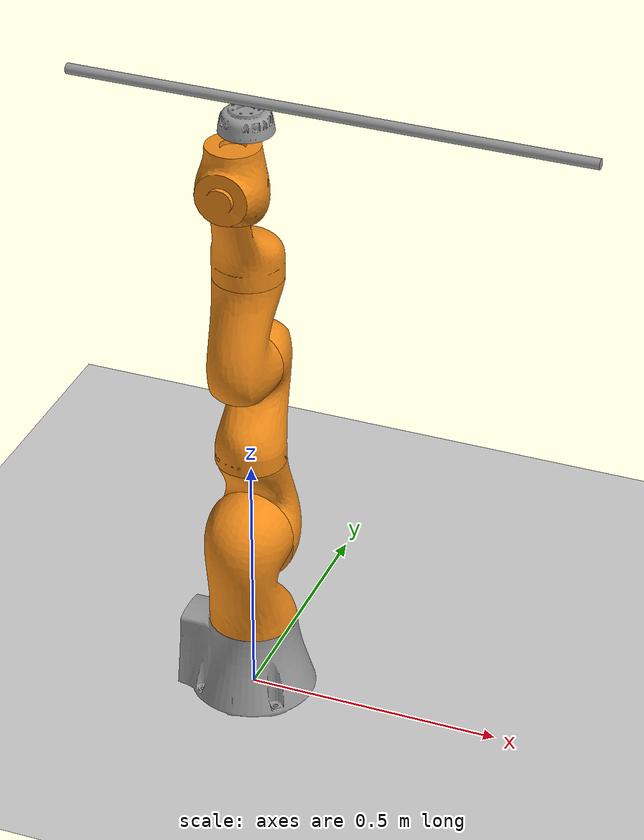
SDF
<sdf version="1.6">
 <world name="default">
  <model name="ground_plane">
   <static>1</static>
   <link name="link">
    <collision name="collision">
     <geometry><plane><normal>0 0 1</normal><size>100 100</size></plane></geometry>
     <surface>
      <contact><collide_bitmask>65535</collide_bitmask></contact>
      <friction><ode><mu>100</mu><mu2>50</mu2></ode></friction>
     </surface>
    </collision>
    <visual name="visual">
     <cast_shadows>0</cast_shadows>
     <geometry><plane><normal>0 0 1</normal><size>100 100</size></plane></geometry>
     <material>
      <script><uri>file://media/materials/scripts/gazebo.material</uri><name>Gazebo/Grey</name></script>
     </material>
    </visual>
   </link>
  </model>
  <light name="sun" type="directional">
   <pose>0 0 10 0 -0 0</pose>
   <diffuse>0.8 0.8 0.8 1</diffuse>
   <specular>0.2 0.2 0.2 1</specular>
   <attenuation>
    <range>1000</range>
    <constant>0.9</constant>
    <linear>0.01</linear>
    <quadratic>0.001</quadratic>
   </attenuation>
   <direction>-0.5 0.1 -0.9</direction>
  </light>
  <gravity>0 0 -9.8</gravity>
  <magnetic_field>6e-06 2.3e-05 -4.2e-05</magnetic_field>
  <atmosphere type="adiabatic"/>
  <physics name="default_physics" default="0" type="ode">
   <max_step_size>0.001</max_step_size>
   <real_time_factor>1</real_time_factor>
   <real_time_update_rate>1000</real_time_update_rate>
  </physics>
  <scene><ambient>0.4 0.4 0.4 1</ambient><background>0.7 0.7 0.7 1</background><shadows>1</shadows></scene>
  <audio><device>default</device></audio>
  <spherical_coordinates>
   <surface_model>EARTH_WGS84</surface_model>
   <latitude_deg>0</latitude_deg>
   <longitude_deg>0</longitude_deg>
   <elevation>0</elevation>
   <heading_deg>0</heading_deg>
  </spherical_coordinates>
  <model name="iiwa">
   <link name="iiwa_link_0">
    <inertial>
     <pose>-0.1 0 0.07 0 -0 0</pose>
     <mass>5</mass>
     <inertia><ixx>0.05</ixx><ixy>0</ixy><ixz>0</ixz><iyy>0.06</iyy><iyz>0</iyz><izz>0.03</izz></inertia>
    </inertial>
    <visual name="iiwa_link_0_visual">
     <geometry>
      <mesh>
       <scale>1 1 1</scale>
       <uri>/home/yoan/ros_ws/src/iiwa_stack/iiwa_description/meshes/iiwa7/visual/link_0.stl</uri>
      </mesh>
     </geometry>
     <material>
      <script><name>Gazebo/Grey</name><uri>file://media/materials/scripts/gazebo.material</uri></script>
     </material>
    </visual>
    <collision name="iiwa_link_0_collision">
     <geometry>
      <mesh>
       <uri>/home/yoan/ros_ws/src/iiwa_stack/iiwa_description/meshes/iiwa7/collision/link_0.stl</uri>
       <scale>1 1 1</scale>
      </mesh>
     </geometry>
     <surface>
      <friction>
       <ode><mu>0.2</mu><mu2>0.2</mu2><fdir1>0 0 0</fdir1><slip1>0</slip1><slip2>0</slip2></ode>
       <torsional>
        <coefficient>1</coefficient>
        <patch_radius>0</patch_radius>
        <surface_radius>0</surface_radius>
        <use_patch_radius>1</use_patch_radius>
        <ode><slip>0</slip></ode>
       </torsional>
      </friction>
      <bounce><restitution_coefficient>0</restitution_coefficient><threshold>1e+06</threshold></bounce>
      <contact>
       <collide_without_contact>0</collide_without_contact>
       <collide_without_contact_bitmask>1</collide_without_contact_bitmask>
       <collide_bitmask>1</collide_bitmask>
       <ode>
        <soft_cfm>0</soft_cfm>
        <soft_erp>0.2</soft_erp>
        <kp>1e+13</kp>
        <kd>1</kd>
        <max_vel>0.01</max_vel>
        <min_depth>0</min_depth>
       </ode>
       <bullet>
        <split_impulse>1</split_impulse>
        <split_impulse_penetration_threshold>-0.01</split_impulse_penetration_threshold>
        <soft_cfm>0</soft_cfm>
        <soft_erp>0.2</soft_erp>
        <kp>1e+13</kp>
        <kd>1</kd>
       </bullet>
      </contact>
     </surface>
    </collision>
   </link>
   <link name="iiwa_link_1">
    <pose>-0 -0 0.15 0 -0 0</pose>
    <inertial>
     <pose>0 -0.03 0.12 0 -0 0</pose>
     <mass>3.4525</mass>
     <inertia>
      <ixx>0.02183</ixx>
      <ixy>0</ixy>
      <ixz>0</ixz>
      <iyy>0.007703</iyy>
      <iyz>-0.003887</iyz>
      <izz>0.02083</izz>
     </inertia>
    </inertial>
    <visual name="iiwa_link_1_visual">
     <pose>0 0 0.0075 0 -0 0</pose>
     <geometry>
      <mesh>
       <scale>1 1 1</scale>
       <uri>/home/yoan/ros_ws/src/iiwa_stack/iiwa_description/meshes/iiwa7/visual/link_1.stl</uri>
      </mesh>
     </geometry>
     <material>
      <script><name>Gazebo/Orange</name><uri>file://media/materials/scripts/gazebo.material</uri></script>
     </material>
    </visual>
    <collision name="iiwa_link_1_collision">
     <pose>0 0 0.0075 0 -0 0</pose>
     <geometry>
      <mesh>
       <uri>/home/yoan/ros_ws/src/iiwa_stack/iiwa_description/meshes/iiwa7/collision/link_1.stl</uri>
       <scale>1 1 1</scale>
      </mesh>
     </geometry>
     <surface>
      <friction>
       <ode><mu>0.2</mu><mu2>0.2</mu2><fdir1>0 0 0</fdir1><slip1>0</slip1><slip2>0</slip2></ode>
       <torsional>
        <coefficient>1</coefficient>
        <patch_radius>0</patch_radius>
        <surface_radius>0</surface_radius>
        <use_patch_radius>1</use_patch_radius>
        <ode><slip>0</slip></ode>
       </torsional>
      </friction>
      <bounce><restitution_coefficient>0</restitution_coefficient><threshold>1e+06</threshold></bounce>
      <contact>
       <collide_without_contact>0</collide_without_contact>
       <collide_without_contact_bitmask>1</collide_without_contact_bitmask>
       <collide_bitmask>1</collide_bitmask>
       <ode>
        <soft_cfm>0</soft_cfm>
        <soft_erp>0.2</soft_erp>
        <kp>1e+13</kp>
        <kd>1</kd>
        <max_vel>0.01</max_vel>
        <min_depth>0</min_depth>
       </ode>
       <bullet>
        <split_impulse>1</split_impulse>
        <split_impulse_penetration_threshold>-0.01</split_impulse_penetration_threshold>
        <soft_cfm>0</soft_cfm>
        <soft_erp>0.2</soft_erp>
        <kp>1e+13</kp>
        <kd>1</kd>
       </bullet>
      </contact>
     </surface>
    </collision>
   </link>
   <link name="iiwa_link_2">
    <pose>0 -0 0.34 1.5708 -0 -3.14159</pose>
    <inertial>
     <pose>0.0003 0.059 0.042 0 -0 0</pose>
     <mass>3.4821</mass>
     <inertia>
      <ixx>0.02076</ixx>
      <ixy>0</ixy>
      <ixz>-0.003626</ixz>
      <iyy>0.02179</iyy>
      <iyz>0</iyz>
      <izz>0.00779</izz>
     </inertia>
    </inertial>
    <visual name="iiwa_link_2_visual">
     <geometry>
      <mesh>
       <scale>1 1 1</scale>
       <uri>/home/yoan/ros_ws/src/iiwa_stack/iiwa_description/meshes/iiwa7/visual/link_2.stl</uri>
      </mesh>
     </geometry>
     <material>
      <script><name>Gazebo/Orange</name><uri>file://media/materials/scripts/gazebo.material</uri></script>
     </material>
    </visual>
    <collision name="iiwa_link_2_collision">
     <geometry>
      <mesh>
       <uri>/home/yoan/ros_ws/src/iiwa_stack/iiwa_description/meshes/iiwa7/collision/link_2.stl</uri>
       <scale>1 1 1</scale>
      </mesh>
     </geometry>
     <surface>
      <friction>
       <ode><mu>0.2</mu><mu2>0.2</mu2><fdir1>0 0 0</fdir1><slip1>0</slip1><slip2>0</slip2></ode>
       <torsional>
        <coefficient>1</coefficient>
        <patch_radius>0</patch_radius>
        <surface_radius>0</surface_radius>
        <use_patch_radius>1</use_patch_radius>
        <ode><slip>0</slip></ode>
       </torsional>
      </friction>
      <bounce><restitution_coefficient>0</restitution_coefficient><threshold>1e+06</threshold></bounce>
      <contact>
       <collide_without_contact>0</collide_without_contact>
       <collide_without_contact_bitmask>1</collide_without_contact_bitmask>
       <collide_bitmask>1</collide_bitmask>
       <ode>
        <soft_cfm>0</soft_cfm>
        <soft_erp>0.2</soft_erp>
        <kp>1e+13</kp>
        <kd>1</kd>
        <max_vel>0.01</max_vel>
        <min_depth>0</min_depth>
       </ode>
       <bullet>
        <split_impulse>1</split_impulse>
        <split_impulse_penetration_threshold>-0.01</split_impulse_penetration_threshold>
        <soft_cfm>0</soft_cfm>
        <soft_erp>0.2</soft_erp>
        <kp>1e+13</kp>
        <kd>1</kd>
       </bullet>
      </contact>
     </surface>
    </collision>
   </link>
   <link name="iiwa_link_3">
    <pose>-0 -0 0.55 0 -0 0</pose>
    <inertial>
     <pose>0 0.03 0.13 0 -0 0</pose>
     <mass>4.05623</mass>
     <inertia>
      <ixx>0.03204</ixx>
      <ixy>0</ixy>
      <ixz>0</ixz>
      <iyy>0.00972</iyy>
      <iyz>0.006227</iyz>
      <izz>0.03042</izz>
     </inertia>
    </inertial>
    <visual name="iiwa_link_3_visual">
     <pose>0 0 -0.026 0 -0 0</pose>
     <geometry>
      <mesh>
       <scale>1 1 1</scale>
       <uri>/home/yoan/ros_ws/src/iiwa_stack/iiwa_description/meshes/iiwa7/visual/link_3.stl</uri>
      </mesh>
     </geometry>
     <material>
      <script><name>Gazebo/Orange</name><uri>file://media/materials/scripts/gazebo.material</uri></script>
     </material>
    </visual>
    <collision name="iiwa_link_3_collision">
     <pose>0 0 -0.026 0 -0 0</pose>
     <geometry>
      <mesh>
       <uri>/home/yoan/ros_ws/src/iiwa_stack/iiwa_description/meshes/iiwa7/collision/link_3.stl</uri>
       <scale>1 1 1</scale>
      </mesh>
     </geometry>
     <surface>
      <friction>
       <ode><mu>0.2</mu><mu2>0.2</mu2><fdir1>0 0 0</fdir1><slip1>0</slip1><slip2>0</slip2></ode>
       <torsional>
        <coefficient>1</coefficient>
        <patch_radius>0</patch_radius>
        <surface_radius>0</surface_radius>
        <use_patch_radius>1</use_patch_radius>
        <ode><slip>0</slip></ode>
       </torsional>
      </friction>
      <bounce><restitution_coefficient>0</restitution_coefficient><threshold>1e+06</threshold></bounce>
      <contact>
       <collide_without_contact>0</collide_without_contact>
       <collide_without_contact_bitmask>1</collide_without_contact_bitmask>
       <collide_bitmask>1</collide_bitmask>
       <ode>
        <soft_cfm>0</soft_cfm>
        <soft_erp>0.2</soft_erp>
        <kp>1e+13</kp>
        <kd>1</kd>
        <max_vel>0.01</max_vel>
        <min_depth>0</min_depth>
       </ode>
       <bullet>
        <split_impulse>1</split_impulse>
        <split_impulse_penetration_threshold>-0.01</split_impulse_penetration_threshold>
        <soft_cfm>0</soft_cfm>
        <soft_erp>0.2</soft_erp>
        <kp>1e+13</kp>
        <kd>1</kd>
       </bullet>
      </contact>
     </surface>
    </collision>
   </link>
   <link name="iiwa_link_4">
    <pose>-0 -0 0.74 1.5708 -0 0</pose>
    <inertial>
     <pose>0 0.067 0.034 0 -0 0</pose>
     <mass>3.4822</mass>
     <inertia>
      <ixx>0.02178</ixx>
      <ixy>0</ixy>
      <ixz>0</ixz>
      <iyy>0.02075</iyy>
      <iyz>-0.003625</iyz>
      <izz>0.007785</izz>
     </inertia>
    </inertial>
    <visual name="iiwa_link_4_visual">
     <geometry>
      <mesh>
       <scale>1 1 1</scale>
       <uri>/home/yoan/ros_ws/src/iiwa_stack/iiwa_description/meshes/iiwa7/visual/link_4.stl</uri>
      </mesh>
     </geometry>
     <material>
      <script><name>Gazebo/Orange</name><uri>file://media/materials/scripts/gazebo.material</uri></script>
     </material>
    </visual>
    <collision name="iiwa_link_4_collision">
     <geometry>
      <mesh>
       <uri>/home/yoan/ros_ws/src/iiwa_stack/iiwa_description/meshes/iiwa7/collision/link_4.stl</uri>
       <scale>1 1 1</scale>
      </mesh>
     </geometry>
     <surface>
      <friction>
       <ode><mu>0.2</mu><mu2>0.2</mu2><fdir1>0 0 0</fdir1><slip1>0</slip1><slip2>0</slip2></ode>
       <torsional>
        <coefficient>1</coefficient>
        <patch_radius>0</patch_radius>
        <surface_radius>0</surface_radius>
        <use_patch_radius>1</use_patch_radius>
        <ode><slip>0</slip></ode>
       </torsional>
      </friction>
      <bounce><restitution_coefficient>0</restitution_coefficient><threshold>1e+06</threshold></bounce>
      <contact>
       <collide_without_contact>0</collide_without_contact>
       <collide_without_contact_bitmask>1</collide_without_contact_bitmask>
       <collide_bitmask>1</collide_bitmask>
       <ode>
        <soft_cfm>0</soft_cfm>
        <soft_erp>0.2</soft_erp>
        <kp>1e+13</kp>
        <kd>1</kd>
        <max_vel>0.01</max_vel>
        <min_depth>0</min_depth>
       </ode>
       <bullet>
        <split_impulse>1</split_impulse>
        <split_impulse_penetration_threshold>-0.01</split_impulse_penetration_threshold>
        <soft_cfm>0</soft_cfm>
        <soft_erp>0.2</soft_erp>
        <kp>1e+13</kp>
        <kd>1</kd>
       </bullet>
      </contact>
     </surface>
    </collision>
   </link>
   <link name="iiwa_link_5">
    <pose>-0 0 0.95 0 -0 -3.14159</pose>
    <inertial>
     <pose>0.0001 0.021 0.076 0 -0 0</pose>
     <mass>2.1633</mass>
     <inertia>
      <ixx>0.01287</ixx>
      <ixy>0</ixy>
      <ixz>0</ixz>
      <iyy>0.005708</iyy>
      <iyz>-0.003946</iyz>
      <izz>0.01112</izz>
     </inertia>
    </inertial>
    <visual name="iiwa_link_5_visual">
     <pose>0 0 -0.026 0 -0 0</pose>
     <geometry>
      <mesh>
       <scale>1 1 1</scale>
       <uri>/home/yoan/ros_ws/src/iiwa_stack/iiwa_description/meshes/iiwa7/visual/link_5.stl</uri>
      </mesh>
     </geometry>
     <material>
      <script><name>Gazebo/Orange</name><uri>file://media/materials/scripts/gazebo.material</uri></script>
     </material>
    </visual>
    <collision name="iiwa_link_5_collision">
     <pose>0 0 -0.026 0 -0 0</pose>
     <geometry>
      <mesh>
       <uri>/home/yoan/ros_ws/src/iiwa_stack/iiwa_description/meshes/iiwa7/collision/link_5.stl</uri>
       <scale>1 1 1</scale>
      </mesh>
     </geometry>
     <surface>
      <friction>
       <ode><mu>0.2</mu><mu2>0.2</mu2><fdir1>0 0 0</fdir1><slip1>0</slip1><slip2>0</slip2></ode>
       <torsional>
        <coefficient>1</coefficient>
        <patch_radius>0</patch_radius>
        <surface_radius>0</surface_radius>
        <use_patch_radius>1</use_patch_radius>
        <ode><slip>0</slip></ode>
       </torsional>
      </friction>
      <bounce><restitution_coefficient>0</restitution_coefficient><threshold>1e+06</threshold></bounce>
      <contact>
       <collide_without_contact>0</collide_without_contact>
       <collide_without_contact_bitmask>1</collide_without_contact_bitmask>
       <collide_bitmask>1</collide_bitmask>
       <ode>
        <soft_cfm>0</soft_cfm>
        <soft_erp>0.2</soft_erp>
        <kp>1e+13</kp>
        <kd>1</kd>
        <max_vel>0.01</max_vel>
        <min_depth>0</min_depth>
       </ode>
       <bullet>
        <split_impulse>1</split_impulse>
        <split_impulse_penetration_threshold>-0.01</split_impulse_penetration_threshold>
        <soft_cfm>0</soft_cfm>
        <soft_erp>0.2</soft_erp>
        <kp>1e+13</kp>
        <kd>1</kd>
       </bullet>
      </contact>
     </surface>
    </collision>
   </link>
   <link name="iiwa_link_6">
    <pose>-0 -0.0607 1.14 1.5708 -0 -3.14159</pose>
    <inertial>
     <pose>0 0.0006 0.0004 0 -0 0</pose>
     <mass>2.3466</mass>
     <inertia>
      <ixx>0.006509</ixx>
      <ixy>0</ixy>
      <ixz>0</ixz>
      <iyy>0.006259</iyy>
      <iyz>0.00031891</iyz>
      <izz>0.004527</izz>
     </inertia>
    </inertial>
    <visual name="iiwa_link_6_visual">
     <geometry>
      <mesh>
       <scale>1 1 1</scale>
       <uri>/home/yoan/ros_ws/src/iiwa_stack/iiwa_description/meshes/iiwa7/visual/link_6.stl</uri>
      </mesh>
     </geometry>
     <material>
      <script><name>Gazebo/Orange</name><uri>file://media/materials/scripts/gazebo.material</uri></script>
      <emissive>0 0 0 1</emissive>
     </material>
    </visual>
    <collision name="iiwa_link_6_collision">
     <geometry>
      <mesh>
       <uri>/home/yoan/ros_ws/src/iiwa_stack/iiwa_description/meshes/iiwa7/collision/link_6.stl</uri>
       <scale>1 1 1</scale>
      </mesh>
     </geometry>
     <surface>
      <friction>
       <ode><mu>0.2</mu><mu2>0.2</mu2><fdir1>0 0 0</fdir1><slip1>0</slip1><slip2>0</slip2></ode>
       <torsional>
        <coefficient>1</coefficient>
        <patch_radius>0</patch_radius>
        <surface_radius>0</surface_radius>
        <use_patch_radius>1</use_patch_radius>
        <ode><slip>0</slip></ode>
       </torsional>
      </friction>
      <bounce><restitution_coefficient>0</restitution_coefficient><threshold>1e+06</threshold></bounce>
      <contact>
       <collide_without_contact>0</collide_without_contact>
       <collide_without_contact_bitmask>1</collide_without_contact_bitmask>
       <collide_bitmask>1</collide_bitmask>
       <ode>
        <soft_cfm>0</soft_cfm>
        <soft_erp>0.2</soft_erp>
        <kp>1e+13</kp>
        <kd>1</kd>
        <max_vel>0.01</max_vel>
        <min_depth>0</min_depth>
       </ode>
       <bullet>
        <split_impulse>1</split_impulse>
        <split_impulse_penetration_threshold>-0.01</split_impulse_penetration_threshold>
        <soft_cfm>0</soft_cfm>
        <soft_erp>0.2</soft_erp>
        <kp>1e+13</kp>
        <kd>1</kd>
       </bullet>
      </contact>
     </surface>
    </collision>
   </link>
   <link name="iiwa_link_7">
    <pose>-0 -0 1.221 0 -0 0</pose>
    <inertial>
     <pose>0 0 0.02 0 -0 0</pose>
     <mass>3.129</mass>
     <inertia>
      <ixx>0.01464</ixx>
      <ixy>0.0005912</ixy>
      <ixz>0</ixz>
      <iyy>0.01465</iyy>
      <iyz>0</iyz>
      <izz>0.002872</izz>
     </inertia>
    </inertial>
    <visual name="iiwa_link_7_visual">
     <pose>0 0 -0.0005 0 -0 0</pose>
     <geometry>
      <mesh>
       <scale>1 1 1</scale>
       <uri>/home/yoan/ros_ws/src/iiwa_stack/iiwa_description/meshes/iiwa7/visual/link_7.stl</uri>
      </mesh>
     </geometry>
     <material>
      <script><name>Gazebo/Grey</name><uri>file://media/materials/scripts/gazebo.material</uri></script>
      <emissive>0 0 0 1</emissive>
     </material>
    </visual>
    <collision name="iiwa_link_7_collision">
     <pose>0 0 -0.0005 0 -0 0</pose>
     <geometry>
      <mesh>
       <uri>/home/yoan/ros_ws/src/iiwa_stack/iiwa_description/meshes/iiwa7/collision/link_7.stl</uri>
       <scale>1 1 1</scale>
      </mesh>
     </geometry>
     <surface>
      <friction>
       <ode><mu>0.2</mu><mu2>0.2</mu2><fdir1>0 0 0</fdir1><slip1>0</slip1><slip2>0</slip2></ode>
       <torsional>
        <coefficient>1</coefficient>
        <patch_radius>0</patch_radius>
        <surface_radius>0</surface_radius>
        <use_patch_radius>1</use_patch_radius>
        <ode><slip>0</slip></ode>
       </torsional>
      </friction>
      <bounce><restitution_coefficient>0</restitution_coefficient><threshold>1e+06</threshold></bounce>
      <contact>
       <collide_without_contact>0</collide_without_contact>
       <collide_without_contact_bitmask>1</collide_without_contact_bitmask>
       <collide_bitmask>1</collide_bitmask>
       <ode>
        <soft_cfm>0</soft_cfm>
        <soft_erp>0.2</soft_erp>
        <kp>1e+13</kp>
        <kd>1</kd>
        <max_vel>0.01</max_vel>
        <min_depth>0</min_depth>
       </ode>
       <bullet>
        <split_impulse>1</split_impulse>
        <split_impulse_penetration_threshold>-0.01</split_impulse_penetration_threshold>
        <soft_cfm>0</soft_cfm>
        <soft_erp>0.2</soft_erp>
        <kp>1e+13</kp>
        <kd>1</kd>
       </bullet>
      </contact>
     </surface>
    </collision>
   </link>
   <link name="link_0">
    <inertial>
     <mass>0.5</mass>
     <inertia>
      <ixx>0.0417167</ixx>
      <ixy>0</ixy>
      <ixz>0</ixz>
      <iyy>0.0417167</iyy>
      <iyz>0</iyz>
      <izz>0.0001</izz>
     </inertia>
    </inertial>
    <pose>0.154487 -0.003327 1.28163 -3.14159 -1.57 3.14159</pose>
    <visual name="visual">
     <geometry><cylinder><radius>0.01</radius><length>1</length></cylinder></geometry>
     <material>
      <lighting>1</lighting>
      <script><uri>file://media/materials/scripts/gazebo.material</uri><name>Gazebo/Grey</name></script>
      <shader type="vertex"><normal_map>__default__</normal_map></shader>
      <ambient>0.3 0.3 0.3 1</ambient>
      <diffuse>0.7 0.7 0.7 1</diffuse>
      <specular>0.01 0.01 0.01 1</specular>
      <emissive>0 0 0 1</emissive>
     </material>
    </visual>
    <collision name="collision">
     <geometry><cylinder><radius>0.01</radius><length>1</length></cylinder></geometry>
     <surface>
      <friction>
       <ode><mu>1</mu><mu2>1</mu2><fdir1>0 0 0</fdir1><slip1>0</slip1><slip2>0</slip2></ode>
       <torsional>
        <coefficient>1</coefficient>
        <patch_radius>0</patch_radius>
        <surface_radius>0</surface_radius>
        <use_patch_radius>1</use_patch_radius>
        <ode><slip>0</slip></ode>
       </torsional>
      </friction>
      <bounce><restitution_coefficient>0</restitution_coefficient><threshold>1e+06</threshold></bounce>
      <contact>
       <collide_without_contact>0</collide_without_contact>
       <collide_without_contact_bitmask>1</collide_without_contact_bitmask>
       <collide_bitmask>1</collide_bitmask>
       <ode>
        <soft_cfm>0</soft_cfm>
        <soft_erp>0.2</soft_erp>
        <kp>1e+13</kp>
        <kd>1</kd>
        <max_vel>0.01</max_vel>
        <min_depth>0</min_depth>
       </ode>
       <bullet>
        <split_impulse>1</split_impulse>
        <split_impulse_penetration_threshold>-0.01</split_impulse_penetration_threshold>
        <soft_cfm>0</soft_cfm>
        <soft_erp>0.2</soft_erp>
        <kp>1e+13</kp>
        <kd>1</kd>
       </bullet>
      </contact>
     </surface>
    </collision>
   </link>
   <joint name="Fixed to world" type="revolute"><parent>world</parent><child>iiwa_link_0</child></joint>
   <joint name="iiwa_joint_1" type="revolute">
    <parent>iiwa_link_0</parent>
    <child>iiwa_link_1</child>
    <axis>
     <xyz>0 0 1</xyz>
     <use_parent_model_frame>1</use_parent_model_frame>
     <limit><lower>-2.96706</lower><upper>2.96706</upper><effort>300</effort><velocity>10</velocity></limit>
     <dynamics>
      <spring_reference>0</spring_reference>
      <spring_stiffness>0</spring_stiffness>
      <damping>0.5</damping>
      <friction>0</friction>
     </dynamics>
    </axis>
    <physics>
     <ode><limit><cfm>0</cfm><erp>0.2</erp></limit><suspension><cfm>0</cfm><erp>0.2</erp></suspension></ode>
    </physics>
   </joint>
   <joint name="iiwa_joint_2" type="revolute">
    <parent>iiwa_link_1</parent>
    <child>iiwa_link_2</child>
    <axis>
     <xyz>-0 1 0</xyz>
     <use_parent_model_frame>1</use_parent_model_frame>
     <limit><lower>-2.0944</lower><upper>2.0944</upper><effort>300</effort><velocity>10</velocity></limit>
     <dynamics>
      <spring_reference>0</spring_reference>
      <spring_stiffness>0</spring_stiffness>
      <damping>0.5</damping>
      <friction>0</friction>
     </dynamics>
    </axis>
    <physics>
     <ode><limit><cfm>0</cfm><erp>0.2</erp></limit><suspension><cfm>0</cfm><erp>0.2</erp></suspension></ode>
    </physics>
   </joint>
   <joint name="iiwa_joint_3" type="revolute">
    <parent>iiwa_link_2</parent>
    <child>iiwa_link_3</child>
    <axis>
     <xyz>0 0 1</xyz>
     <use_parent_model_frame>1</use_parent_model_frame>
     <limit><lower>-2.96706</lower><upper>2.96706</upper><effort>300</effort><velocity>10</velocity></limit>
     <dynamics>
      <spring_reference>0</spring_reference>
      <spring_stiffness>0</spring_stiffness>
      <damping>0.5</damping>
      <friction>0</friction>
     </dynamics>
    </axis>
    <physics>
     <ode><limit><cfm>0</cfm><erp>0.2</erp></limit><suspension><cfm>0</cfm><erp>0.2</erp></suspension></ode>
    </physics>
   </joint>
   <joint name="iiwa_joint_4" type="revolute">
    <parent>iiwa_link_3</parent>
    <child>iiwa_link_4</child>
    <axis>
     <xyz>0 -1 0</xyz>
     <use_parent_model_frame>1</use_parent_model_frame>
     <limit><lower>-2.0944</lower><upper>2.0944</upper><effort>300</effort><velocity>10</velocity></limit>
     <dynamics>
      <spring_reference>0</spring_reference>
      <spring_stiffness>0</spring_stiffness>
      <damping>0.5</damping>
      <friction>0</friction>
     </dynamics>
    </axis>
    <physics>
     <ode><limit><cfm>0</cfm><erp>0.2</erp></limit><suspension><cfm>0</cfm><erp>0.2</erp></suspension></ode>
    </physics>
   </joint>
   <joint name="iiwa_joint_5" type="revolute">
    <parent>iiwa_link_4</parent>
    <child>iiwa_link_5</child>
    <axis>
     <xyz>0 0 1</xyz>
     <use_parent_model_frame>1</use_parent_model_frame>
     <limit><lower>-2.96706</lower><upper>2.96706</upper><effort>300</effort><velocity>10</velocity></limit>
     <dynamics>
      <spring_reference>0</spring_reference>
      <spring_stiffness>0</spring_stiffness>
      <damping>0.5</damping>
      <friction>0</friction>
     </dynamics>
    </axis>
    <physics>
     <ode><limit><cfm>0</cfm><erp>0.2</erp></limit><suspension><cfm>0</cfm><erp>0.2</erp></suspension></ode>
    </physics>
   </joint>
   <joint name="iiwa_joint_6" type="revolute">
    <parent>iiwa_link_5</parent>
    <child>iiwa_link_6</child>
    <axis>
     <xyz>-0 1 -0</xyz>
     <use_parent_model_frame>1</use_parent_model_frame>
     <limit><lower>-2.0944</lower><upper>2.0944</upper><effort>300</effort><velocity>10</velocity></limit>
     <dynamics>
      <spring_reference>0</spring_reference>
      <spring_stiffness>0</spring_stiffness>
      <damping>0.5</damping>
      <friction>0</friction>
     </dynamics>
    </axis>
    <physics>
     <ode><limit><cfm>0</cfm><erp>0.2</erp></limit><suspension><cfm>0</cfm><erp>0.2</erp></suspension></ode>
    </physics>
   </joint>
   <joint name="iiwa_joint_7" type="revolute">
    <parent>iiwa_link_6</parent>
    <child>iiwa_link_7</child>
    <axis>
     <xyz>0 0 1</xyz>
     <use_parent_model_frame>1</use_parent_model_frame>
     <limit><lower>-3.05433</lower><upper>3.05433</upper><effort>300</effort><velocity>10</velocity></limit>
     <dynamics>
      <spring_reference>0</spring_reference>
      <spring_stiffness>0</spring_stiffness>
      <damping>0.5</damping>
      <friction>0</friction>
     </dynamics>
    </axis>
    <physics>
     <ode><limit><cfm>0</cfm><erp>0.2</erp></limit><suspension><cfm>0</cfm><erp>0.2</erp></suspension></ode>
    </physics>
   </joint>
   <joint name="iiwa_link_7_JOINT_0" type="revolute">
    <parent>iiwa_link_7</parent>
    <child>link_0</child>
    <axis>
     <xyz>1 0 0</xyz>
     <use_parent_model_frame>0</use_parent_model_frame>
     <limit>
      <lower>-1.79769e+308</lower>
      <upper>1.79769e+308</upper>
      <effort>-1</effort>
      <velocity>-1</velocity>
     </limit>
     <dynamics>
      <spring_reference>0</spring_reference>
      <spring_stiffness>0</spring_stiffness>
      <damping>0</damping>
      <friction>0</friction>
     </dynamics>
    </axis>
    <physics>
     <ode><limit><cfm>0</cfm><erp>0.2</erp></limit><suspension><cfm>0</cfm><erp>0.2</erp></suspension></ode>
    </physics>
   </joint>
   <static>0</static>
   <plugin name="gazebo_ros_control" filename="libgazebo_ros_control.so">
    <robotNamespace>/iiwa</robotNamespace>
   </plugin>
   <pose>0 0 0 0 -2e-06 0</pose>
  </model>
 </world>
</sdf>
